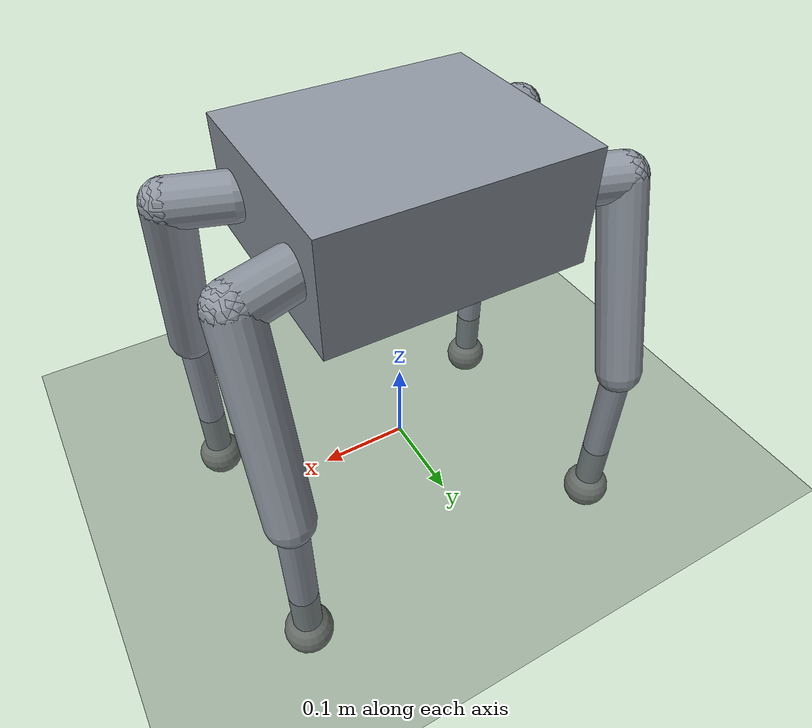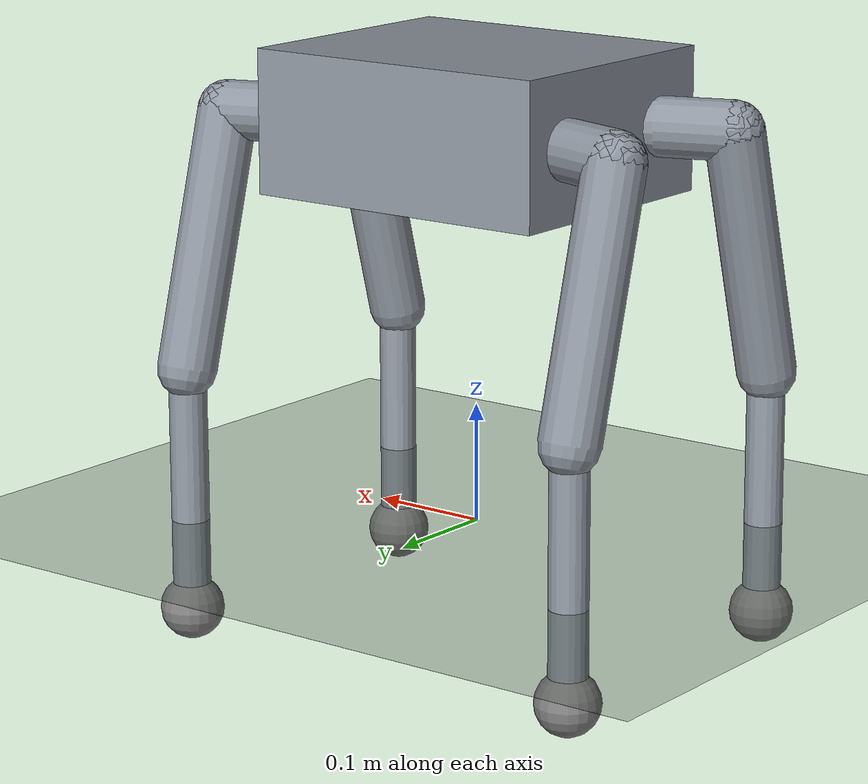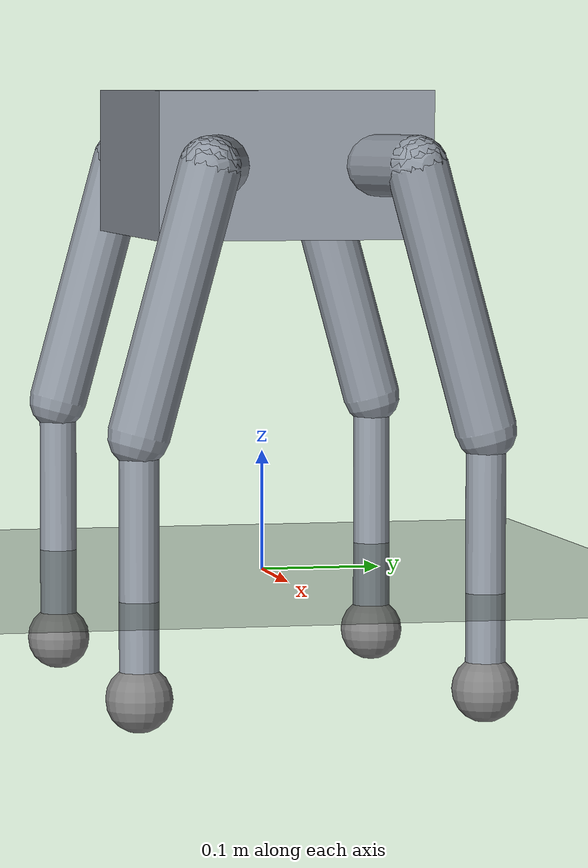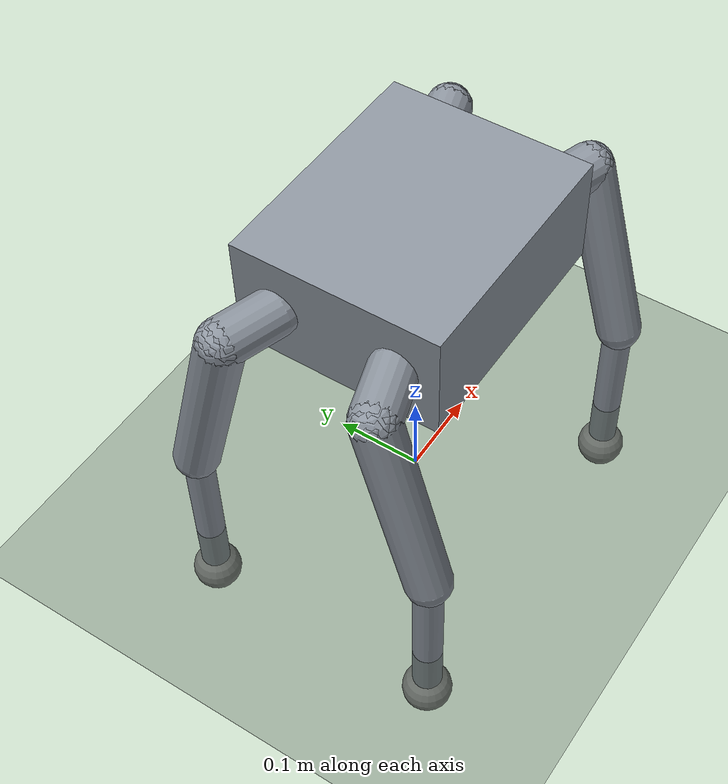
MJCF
<mujoco model="Creeper20260714 portable">
  <compiler angle="radian" coordinate="local" autolimits="true"/>
  <option timestep="0.005" gravity="0 0 -9.80665" integrator="implicitfast" iterations="50" cone="elliptic"/>
  <size njmax="2000" nconmax="200"/>
  <default>
    <joint damping="0.05" armature="0.002" limited="true"/>
    <geom friction="0.8 0.02 0.001" condim="4" solref="0.008 1" solimp="0.9 0.95 0.002"/>
    <default class="visual"><geom contype="0" conaffinity="0" group="1" rgba="0.55 0.58 0.62 1"/></default>
    <default class="collision"><geom group="3" rgba="0.2 0.3 0.4 .25"/></default>
    <default class="foot"><geom type="sphere" size="0.026" mass="0.03" friction="1.0 0.03 0.002" rgba="0.1 0.1 0.1 1"/></default>
    <default class="motor"><motor ctrllimited="true" ctrlrange="-23.7 23.7" forcelimited="true" forcerange="-23.7 23.7" gear="1"/></default>
  </default>
  <visual><headlight ambient=".3 .3 .3" diffuse=".8 .8 .8"/><rgba haze=".15 .25 .35 1"/></visual>
  <worldbody>
    <light pos="0 0 3" dir="0 0 -1"/>
    <geom name="ground" type="plane" size="10 10 .1" rgba=".22 .28 .22 1" friction="0.9 .02 .001"/>
    <body name="base" pos="0 0 .34">
      <freejoint name="floating_base"/>
      <inertial pos=".003865 -.0000203 -.0000181" mass="3.741831" diaginertia=".0095324 .0083275 .0118622"/>
      <geom class="visual" type="box" size=".136 .113 .06"/>
      <geom name="base_collision" class="collision" type="box" size=".132 .109 .055" mass="0"/>
      <site name="imu_site" pos=".003865 0 .035" size=".008" rgba="1 0 0 1"/>

      <body name="FL_hip" pos=".1366 .065 0">
        <joint name="FL_hip_joint" axis="1 0 0" range="-1.0472 1.0472"/>
        <inertial pos=".04316 -.002851 -.000549" mass=".320257" diaginertia=".0002026 .0003385 .0001657"/>
        <geom class="visual" type="capsule" fromto="0 0 0 .05825 .0186 0" size=".025"/>
        <geom class="collision" type="capsule" fromto="0 0 0 .05825 .0186 0" size=".021" mass="0"/>
        <body name="FL_thigh" pos=".05825 .0186 0"><joint name="FL_thigh_joint" axis="0 1 0" range="-1.5708 3.4907"/>
          <inertial pos="-.00049 .03387 -.03483" mass=".765389" diaginertia=".0027028 .0031618 .0004826"/>
          <geom class="visual" type="capsule" fromto="0 0 0 0 .0572 -.21" size=".025"/><geom class="collision" type="capsule" fromto="0 0 0 0 .0572 -.21" size=".019" mass="0"/>
          <body name="FL_calf" pos="0 .0572 -.21"><joint name="FL_calf_joint" axis="0 1 0" range="-2.7227 -.83776"/>
            <inertial pos=".006313 0 -.09177" mass=".247799" diaginertia=".0005594 .0005799 .00002494"/>
            <geom class="visual" type="capsule" fromto="0 0 0 0 0 -.208" size=".016"/><geom class="collision" type="capsule" fromto="0 0 0 0 0 -.19" size=".012" mass="0"/>
            <body name="FL_foot" pos="0 0 -.208"><geom name="FL_foot_geom" class="foot"/><site name="FL_foot_site" size=".027"/></body>
          </body>
        </body>
      </body>
      <body name="FR_hip" pos=".1366 -.065 0">
        <joint name="FR_hip_joint" axis="1 0 0" range="-1.0472 1.0472"/><inertial pos=".04316 .002851 -.000549" mass=".320257" diaginertia=".0002026 .0003385 .0001657"/>
        <geom class="visual" type="capsule" fromto="0 0 0 .05825 -.0186 0" size=".025"/><geom class="collision" type="capsule" fromto="0 0 0 .05825 -.0186 0" size=".021" mass="0"/>
        <body name="FR_thigh" pos=".05825 -.0186 0"><joint name="FR_thigh_joint" axis="0 1 0" range="-1.5708 3.4907"/><inertial pos="-.00049 -.03387 -.03483" mass=".765389" diaginertia=".0027028 .0031618 .0004826"/>
          <geom class="visual" type="capsule" fromto="0 0 0 0 -.0572 -.21" size=".025"/><geom class="collision" type="capsule" fromto="0 0 0 0 -.0572 -.21" size=".019" mass="0"/>
          <body name="FR_calf" pos="0 -.0572 -.21"><joint name="FR_calf_joint" axis="0 1 0" range="-2.7227 -.83776"/><inertial pos=".006313 0 -.09177" mass=".247799" diaginertia=".0005594 .0005799 .00002494"/>
            <geom class="visual" type="capsule" fromto="0 0 0 0 0 -.208" size=".016"/><geom class="collision" type="capsule" fromto="0 0 0 0 0 -.19" size=".012" mass="0"/><body name="FR_foot" pos="0 0 -.208"><geom name="FR_foot_geom" class="foot"/><site name="FR_foot_site" size=".027"/></body>
          </body>
        </body>
      </body>
      <body name="RL_hip" pos="-.1366 .065 0">
        <joint name="RL_hip_joint" axis="1 0 0" range="-1.0472 1.0472"/><inertial pos="-.04316 -.002851 -.000549" mass=".320257" diaginertia=".0002026 .0003385 .0001657"/>
        <geom class="visual" type="capsule" fromto="0 0 0 -.05825 .0186 0" size=".025"/><geom class="collision" type="capsule" fromto="0 0 0 -.05825 .0186 0" size=".021" mass="0"/>
        <body name="RL_thigh" pos="-.05825 .0186 0"><joint name="RL_thigh_joint" axis="0 1 0" range="-1.5708 3.4907"/><inertial pos=".00049 .03387 -.03483" mass=".765389" diaginertia=".0027028 .0031618 .0004826"/>
          <geom class="visual" type="capsule" fromto="0 0 0 0 .0572 -.21" size=".025"/><geom class="collision" type="capsule" fromto="0 0 0 0 .0572 -.21" size=".019" mass="0"/>
          <body name="RL_calf" pos="0 .0572 -.21"><joint name="RL_calf_joint" axis="0 1 0" range="-2.7227 -.83776"/><inertial pos=".006313 0 -.09177" mass=".247799" diaginertia=".0005594 .0005799 .00002494"/>
            <geom class="visual" type="capsule" fromto="0 0 0 0 0 -.208" size=".016"/><geom class="collision" type="capsule" fromto="0 0 0 0 0 -.19" size=".012" mass="0"/><body name="RL_foot" pos="0 0 -.208"><geom name="RL_foot_geom" class="foot"/><site name="RL_foot_site" size=".027"/></body>
          </body>
        </body>
      </body>
      <body name="RR_hip" pos="-.1366 -.065 0">
        <joint name="RR_hip_joint" axis="1 0 0" range="-1.0472 1.0472"/><inertial pos="-.04316 .002851 -.000549" mass=".320257" diaginertia=".0002026 .0003385 .0001657"/>
        <geom class="visual" type="capsule" fromto="0 0 0 -.05825 -.0186 0" size=".025"/><geom class="collision" type="capsule" fromto="0 0 0 -.05825 -.0186 0" size=".021" mass="0"/>
        <body name="RR_thigh" pos="-.05825 -.0186 0"><joint name="RR_thigh_joint" axis="0 1 0" range="-1.5708 3.4907"/><inertial pos=".00049 -.03387 -.03483" mass=".765389" diaginertia=".0027028 .0031618 .0004826"/>
          <geom class="visual" type="capsule" fromto="0 0 0 0 -.0572 -.21" size=".025"/><geom class="collision" type="capsule" fromto="0 0 0 0 -.0572 -.21" size=".019" mass="0"/>
          <body name="RR_calf" pos="0 -.0572 -.21"><joint name="RR_calf_joint" axis="0 1 0" range="-2.7227 -.83776"/><inertial pos=".006313 0 -.09177" mass=".247799" diaginertia=".0005594 .0005799 .00002494"/>
            <geom class="visual" type="capsule" fromto="0 0 0 0 0 -.208" size=".016"/><geom class="collision" type="capsule" fromto="0 0 0 0 0 -.19" size=".012" mass="0"/><body name="RR_foot" pos="0 0 -.208"><geom name="RR_foot_geom" class="foot"/><site name="RR_foot_site" size=".027"/></body>
          </body>
        </body>
      </body>
    </body>
  </worldbody>
  <contact><exclude body1="base" body2="FL_hip"/><exclude body1="base" body2="FR_hip"/><exclude body1="base" body2="RL_hip"/><exclude body1="base" body2="RR_hip"/></contact>
  <actuator>
    <motor class="motor" name="FL_hip_actuator" joint="FL_hip_joint"/><motor class="motor" name="FR_hip_actuator" joint="FR_hip_joint"/><motor class="motor" name="RL_hip_actuator" joint="RL_hip_joint"/><motor class="motor" name="RR_hip_actuator" joint="RR_hip_joint"/>
    <motor class="motor" name="FL_thigh_actuator" joint="FL_thigh_joint"/><motor class="motor" name="FR_thigh_actuator" joint="FR_thigh_joint"/><motor class="motor" name="RL_thigh_actuator" joint="RL_thigh_joint"/><motor class="motor" name="RR_thigh_actuator" joint="RR_thigh_joint"/>
    <motor class="motor" name="FL_calf_actuator" joint="FL_calf_joint"/><motor class="motor" name="FR_calf_actuator" joint="FR_calf_joint"/><motor class="motor" name="RL_calf_actuator" joint="RL_calf_joint"/><motor class="motor" name="RR_calf_actuator" joint="RR_calf_joint"/>
  </actuator>
  <sensor>
    <framequat name="imu_quat" objtype="site" objname="imu_site"/><gyro name="imu_gyro" site="imu_site"/><accelerometer name="imu_accel" site="imu_site"/>
    <touch name="FL_foot_touch" site="FL_foot_site"/><touch name="FR_foot_touch" site="FR_foot_site"/><touch name="RL_foot_touch" site="RL_foot_site"/><touch name="RR_foot_touch" site="RR_foot_site"/>
    <jointpos name="FL_hip_pos" joint="FL_hip_joint"/><jointpos name="FR_hip_pos" joint="FR_hip_joint"/><jointpos name="RL_hip_pos" joint="RL_hip_joint"/><jointpos name="RR_hip_pos" joint="RR_hip_joint"/>
    <jointpos name="FL_thigh_pos" joint="FL_thigh_joint"/><jointpos name="FR_thigh_pos" joint="FR_thigh_joint"/><jointpos name="RL_thigh_pos" joint="RL_thigh_joint"/><jointpos name="RR_thigh_pos" joint="RR_thigh_joint"/>
    <jointpos name="FL_calf_pos" joint="FL_calf_joint"/><jointpos name="FR_calf_pos" joint="FR_calf_joint"/><jointpos name="RL_calf_pos" joint="RL_calf_joint"/><jointpos name="RR_calf_pos" joint="RR_calf_joint"/>
    <jointvel name="FL_hip_vel" joint="FL_hip_joint"/><jointvel name="FR_hip_vel" joint="FR_hip_joint"/><jointvel name="RL_hip_vel" joint="RL_hip_joint"/><jointvel name="RR_hip_vel" joint="RR_hip_joint"/>
    <jointvel name="FL_thigh_vel" joint="FL_thigh_joint"/><jointvel name="FR_thigh_vel" joint="FR_thigh_joint"/><jointvel name="RL_thigh_vel" joint="RL_thigh_joint"/><jointvel name="RR_thigh_vel" joint="RR_thigh_joint"/>
    <jointvel name="FL_calf_vel" joint="FL_calf_joint"/><jointvel name="FR_calf_vel" joint="FR_calf_joint"/><jointvel name="RL_calf_vel" joint="RL_calf_joint"/><jointvel name="RR_calf_vel" joint="RR_calf_joint"/>
    <actuatorfrc name="FL_hip_force" actuator="FL_hip_actuator"/><actuatorfrc name="FR_hip_force" actuator="FR_hip_actuator"/><actuatorfrc name="RL_hip_force" actuator="RL_hip_actuator"/><actuatorfrc name="RR_hip_force" actuator="RR_hip_actuator"/>
    <actuatorfrc name="FL_thigh_force" actuator="FL_thigh_actuator"/><actuatorfrc name="FR_thigh_force" actuator="FR_thigh_actuator"/><actuatorfrc name="RL_thigh_force" actuator="RL_thigh_actuator"/><actuatorfrc name="RR_thigh_force" actuator="RR_thigh_actuator"/>
    <actuatorfrc name="FL_calf_force" actuator="FL_calf_actuator"/><actuatorfrc name="FR_calf_force" actuator="FR_calf_actuator"/><actuatorfrc name="RL_calf_force" actuator="RL_calf_actuator"/><actuatorfrc name="RR_calf_force" actuator="RR_calf_actuator"/>
  </sensor>
  <keyframe>
    <key name="prone" qpos="0 0 .17 1 0 0 0  0 1.3 -2.2  0 1.3 -2.2  0 1.3 -2.2  0 1.3 -2.2"/>
    <key name="standing" qpos="0 0 .34 1 0 0 0  .1 .8 -1.5  -.1 .8 -1.5  .1 1 -1.5  -.1 1 -1.5"/>
  </keyframe>
</mujoco>
